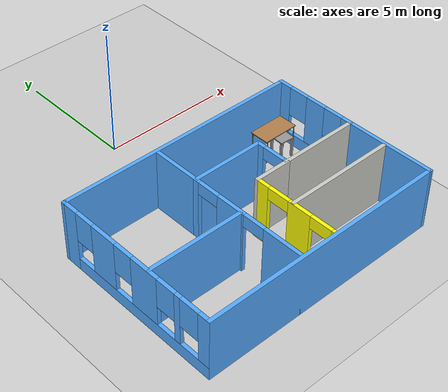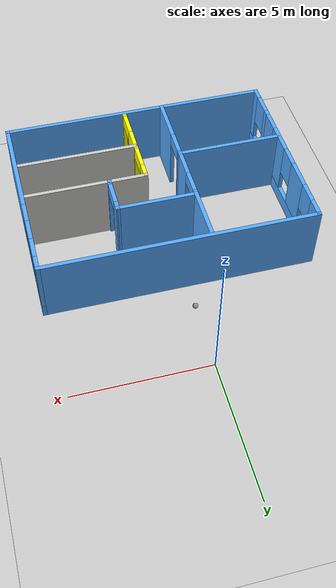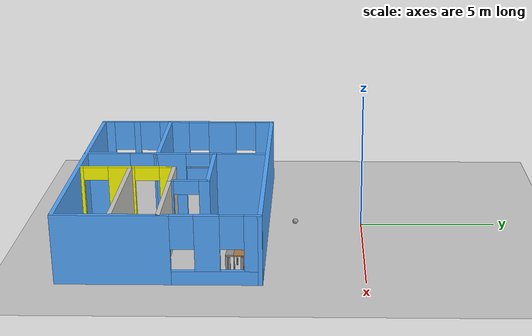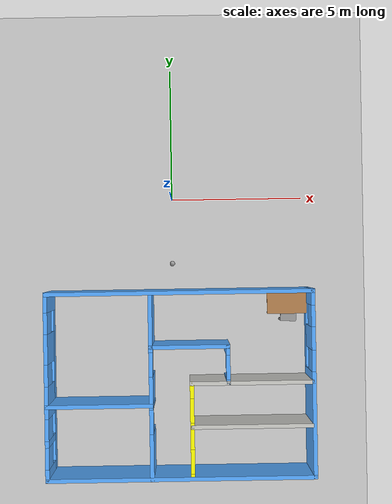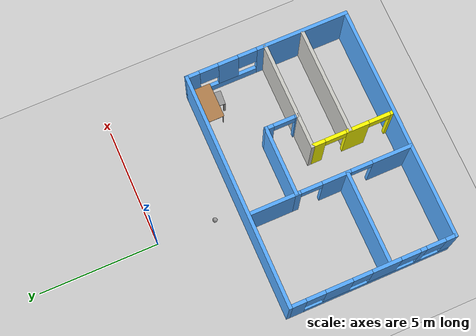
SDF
<sdf version="1.7">
 <world name="default">
  <model name="ground_plane">
   <static>1</static>
   <link name="link">
    <collision name="collision">
     <geometry><plane><normal>0 0 1</normal><size>100 100</size></plane></geometry>
     <surface>
      <contact><collide_bitmask>65535</collide_bitmask></contact>
      <friction><ode><mu>100</mu><mu2>50</mu2></ode></friction>
     </surface>
    </collision>
    <visual name="visual">
     <cast_shadows>0</cast_shadows>
     <geometry><plane><normal>0 0 1</normal><size>100 100</size></plane></geometry>
     <material>
      <script><uri>file://media/materials/scripts/gazebo.material</uri><name>Gazebo/Grey</name></script>
     </material>
    </visual>
   </link>
  </model>
  <model name="building">
   <pose>0.225 -6.955 0 0 -0 0</pose>
   <link name="Wall_13">
    <pose>-4.925 0 0 0 0 -1.5708</pose>
    <visual name="Wall_13_Visual_0">
     <pose>-3.1325 0 1.25 0 -0 0</pose>
     <geometry><box><size>0.735 0.15 2.5</size></box></geometry>
     <material>
      <script><uri>file://media/materials/scripts/gazebo.material</uri><name>Gazebo/Grey</name></script>
      <ambient>0.333333 0.666667 1 1</ambient>
     </material>
     <meta><layer>0</layer></meta>
    </visual>
    <collision name="Wall_13_Collision_0">
     <geometry><box><size>0.735 0.15 2.5</size></box></geometry>
     <pose>-3.1325 0 1.25 0 -0 0</pose>
    </collision>
    <visual name="Wall_13_Visual_1">
     <pose>0.3675 0 0.25 0 -0 0</pose>
     <geometry><box><size>6.265 0.15 0.5</size></box></geometry>
     <material>
      <script><uri>file://media/materials/scripts/gazebo.material</uri><name>Gazebo/Grey</name></script>
      <ambient>0.333333 0.666667 1 1</ambient>
     </material>
     <meta><layer>0</layer></meta>
    </visual>
    <collision name="Wall_13_Collision_1">
     <geometry><box><size>6.265 0.15 0.5</size></box></geometry>
     <pose>0.3675 0 0.25 0 -0 0</pose>
    </collision>
    <visual name="Wall_13_Visual_2">
     <pose>-1.405 0 1.5 0 -0 0</pose>
     <geometry><box><size>1.12 0.15 2</size></box></geometry>
     <material>
      <script><uri>file://media/materials/scripts/gazebo.material</uri><name>Gazebo/Grey</name></script>
      <ambient>0.333333 0.666667 1 1</ambient>
     </material>
     <meta><layer>0</layer></meta>
    </visual>
    <collision name="Wall_13_Collision_2">
     <geometry><box><size>1.12 0.15 2</size></box></geometry>
     <pose>-1.405 0 1.5 0 -0 0</pose>
    </collision>
    <visual name="Wall_13_Visual_3">
     <pose>0.555 0 1.5 0 -0 0</pose>
     <geometry><box><size>1.2 0.15 2</size></box></geometry>
     <material>
      <script><uri>file://media/materials/scripts/gazebo.material</uri><name>Gazebo/Grey</name></script>
      <ambient>0.333333 0.666667 1 1</ambient>
     </material>
     <meta><layer>0</layer></meta>
    </visual>
    <collision name="Wall_13_Collision_3">
     <geometry><box><size>1.2 0.15 2</size></box></geometry>
     <pose>0.555 0 1.5 0 -0 0</pose>
    </collision>
    <visual name="Wall_13_Visual_4">
     <pose>2.08 0 1.5 0 -0 0</pose>
     <geometry><box><size>0.25 0.15 2</size></box></geometry>
     <material>
      <script><uri>file://media/materials/scripts/gazebo.material</uri><name>Gazebo/Grey</name></script>
      <ambient>0.333333 0.666667 1 1</ambient>
     </material>
     <meta><layer>0</layer></meta>
    </visual>
    <collision name="Wall_13_Collision_4">
     <geometry><box><size>0.25 0.15 2</size></box></geometry>
     <pose>2.08 0 1.5 0 -0 0</pose>
    </collision>
    <visual name="Wall_13_Visual_5">
     <pose>3.2525 0 1.5 0 -0 0</pose>
     <geometry><box><size>0.495 0.15 2</size></box></geometry>
     <material>
      <script><uri>file://media/materials/scripts/gazebo.material</uri><name>Gazebo/Grey</name></script>
      <ambient>0.333333 0.666667 1 1</ambient>
     </material>
     <meta><layer>0</layer></meta>
    </visual>
    <collision name="Wall_13_Collision_5">
     <geometry><box><size>0.495 0.15 2</size></box></geometry>
     <pose>3.2525 0 1.5 0 -0 0</pose>
    </collision>
    <visual name="Wall_13_Visual_6">
     <pose>-2.365 0 1.9 0 -0 0</pose>
     <geometry><box><size>0.8 0.15 1.2</size></box></geometry>
     <material>
      <script><uri>file://media/materials/scripts/gazebo.material</uri><name>Gazebo/Grey</name></script>
      <ambient>0.333333 0.666667 1 1</ambient>
     </material>
     <meta><layer>0</layer></meta>
    </visual>
    <collision name="Wall_13_Collision_6">
     <geometry><box><size>0.8 0.15 1.2</size></box></geometry>
     <pose>-2.365 0 1.9 0 -0 0</pose>
    </collision>
    <visual name="Wall_13_Visual_7">
     <pose>-0.445 0 1.9 0 -0 0</pose>
     <geometry><box><size>0.8 0.15 1.2</size></box></geometry>
     <material>
      <script><uri>file://media/materials/scripts/gazebo.material</uri><name>Gazebo/Grey</name></script>
      <ambient>0.333333 0.666667 1 1</ambient>
     </material>
     <meta><layer>0</layer></meta>
    </visual>
    <collision name="Wall_13_Collision_7">
     <geometry><box><size>0.8 0.15 1.2</size></box></geometry>
     <pose>-0.445 0 1.9 0 -0 0</pose>
    </collision>
    <visual name="Wall_13_Visual_8">
     <pose>1.555 0 1.9 0 -0 0</pose>
     <geometry><box><size>0.8 0.15 1.2</size></box></geometry>
     <material>
      <script><uri>file://media/materials/scripts/gazebo.material</uri><name>Gazebo/Grey</name></script>
      <ambient>0.333333 0.666667 1 1</ambient>
     </material>
     <meta><layer>0</layer></meta>
    </visual>
    <collision name="Wall_13_Collision_8">
     <geometry><box><size>0.8 0.15 1.2</size></box></geometry>
     <pose>1.555 0 1.9 0 -0 0</pose>
    </collision>
    <visual name="Wall_13_Visual_9">
     <pose>2.605 0 1.9 0 -0 0</pose>
     <geometry><box><size>0.8 0.15 1.2</size></box></geometry>
     <material>
      <script><uri>file://media/materials/scripts/gazebo.material</uri><name>Gazebo/Grey</name></script>
      <ambient>0.333333 0.666667 1 1</ambient>
     </material>
     <meta><layer>0</layer></meta>
    </visual>
    <collision name="Wall_13_Collision_9">
     <geometry><box><size>0.8 0.15 1.2</size></box></geometry>
     <pose>2.605 0 1.9 0 -0 0</pose>
    </collision>
   </link>
   <link name="Wall_14">
    <collision name="Wall_14_Collision">
     <geometry><box><size>10 0.15 2.5</size></box></geometry>
     <pose>0 0 1.25 0 -0 0</pose>
    </collision>
    <visual name="Wall_14_Visual">
     <pose>0 0 1.25 0 -0 0</pose>
     <geometry><box><size>10 0.15 2.5</size></box></geometry>
     <material>
      <script><uri>file://media/materials/scripts/gazebo.material</uri><name>Gazebo/Grey</name></script>
      <ambient>0.333333 0.666667 1 1</ambient>
     </material>
     <meta><layer>0</layer></meta>
    </visual>
    <pose>0 -3.425 0 0 -0 0</pose>
   </link>
   <link name="Wall_15">
    <pose>4.925 0 0 0 -0 1.5708</pose>
    <visual name="Wall_15_Visual_0">
     <pose>-1.5275 0 1.25 0 -0 0</pose>
     <geometry><box><size>3.945 0.15 2.5</size></box></geometry>
     <material>
      <script><uri>file://media/materials/scripts/gazebo.material</uri><name>Gazebo/Grey</name></script>
      <ambient>0.333333 0.666667 1 1</ambient>
     </material>
     <meta><layer>0</layer></meta>
    </visual>
    <collision name="Wall_15_Collision_0">
     <geometry><box><size>3.945 0.15 2.5</size></box></geometry>
     <pose>-1.5275 0 1.25 0 -0 0</pose>
    </collision>
    <visual name="Wall_15_Visual_1">
     <pose>1.9725 0 0.25 0 -0 0</pose>
     <geometry><box><size>3.055 0.15 0.5</size></box></geometry>
     <material>
      <script><uri>file://media/materials/scripts/gazebo.material</uri><name>Gazebo/Grey</name></script>
      <ambient>0.333333 0.666667 1 1</ambient>
     </material>
     <meta><layer>0</layer></meta>
    </visual>
    <collision name="Wall_15_Collision_1">
     <geometry><box><size>3.055 0.15 0.5</size></box></geometry>
     <pose>1.9725 0 0.25 0 -0 0</pose>
    </collision>
    <visual name="Wall_15_Visual_2">
     <pose>1.67 0 1.5 0 -0 0</pose>
     <geometry><box><size>0.85 0.15 2</size></box></geometry>
     <material>
      <script><uri>file://media/materials/scripts/gazebo.material</uri><name>Gazebo/Grey</name></script>
      <ambient>0.333333 0.666667 1 1</ambient>
     </material>
     <meta><layer>0</layer></meta>
    </visual>
    <collision name="Wall_15_Collision_2">
     <geometry><box><size>0.85 0.15 2</size></box></geometry>
     <pose>1.67 0 1.5 0 -0 0</pose>
    </collision>
    <visual name="Wall_15_Visual_3">
     <pose>3.1975 0 1.5 0 -0 0</pose>
     <geometry><box><size>0.605 0.15 2</size></box></geometry>
     <material>
      <script><uri>file://media/materials/scripts/gazebo.material</uri><name>Gazebo/Grey</name></script>
      <ambient>0.333333 0.666667 1 1</ambient>
     </material>
     <meta><layer>0</layer></meta>
    </visual>
    <collision name="Wall_15_Collision_3">
     <geometry><box><size>0.605 0.15 2</size></box></geometry>
     <pose>3.1975 0 1.5 0 -0 0</pose>
    </collision>
    <visual name="Wall_15_Visual_4">
     <pose>0.845 0 1.9 0 -0 0</pose>
     <geometry><box><size>0.8 0.15 1.2</size></box></geometry>
     <material>
      <script><uri>file://media/materials/scripts/gazebo.material</uri><name>Gazebo/Grey</name></script>
      <ambient>0.333333 0.666667 1 1</ambient>
     </material>
     <meta><layer>0</layer></meta>
    </visual>
    <collision name="Wall_15_Collision_4">
     <geometry><box><size>0.8 0.15 1.2</size></box></geometry>
     <pose>0.845 0 1.9 0 -0 0</pose>
    </collision>
    <visual name="Wall_15_Visual_5">
     <pose>2.495 0 1.9 0 -0 0</pose>
     <geometry><box><size>0.8 0.15 1.2</size></box></geometry>
     <material>
      <script><uri>file://media/materials/scripts/gazebo.material</uri><name>Gazebo/Grey</name></script>
      <ambient>0.333333 0.666667 1 1</ambient>
     </material>
     <meta><layer>0</layer></meta>
    </visual>
    <collision name="Wall_15_Collision_5">
     <geometry><box><size>0.8 0.15 1.2</size></box></geometry>
     <pose>2.495 0 1.9 0 -0 0</pose>
    </collision>
   </link>
   <link name="Wall_16">
    <collision name="Wall_16_Collision">
     <geometry><box><size>10 0.15 2.5</size></box></geometry>
     <pose>0 0 1.25 0 -0 0</pose>
    </collision>
    <visual name="Wall_16_Visual">
     <pose>0 0 1.25 0 -0 0</pose>
     <geometry><box><size>10 0.15 2.5</size></box></geometry>
     <material>
      <script><uri>file://media/materials/scripts/gazebo.material</uri><name>Gazebo/Grey</name></script>
      <ambient>0.333333 0.666667 1 1</ambient>
     </material>
     <meta><layer>0</layer></meta>
    </visual>
    <pose>0 3.425 0 0 -0 3.14159</pose>
   </link>
   <link name="Wall_26">
    <pose>-1.075 -1 0 0 -0 1.5708</pose>
    <visual name="Wall_26_Visual_0">
     <pose>-1.6325 0 1.25 0 -0 0</pose>
     <geometry><box><size>1.735 0.15 2.5</size></box></geometry>
     <material>
      <script><uri>file://media/materials/scripts/gazebo.material</uri><name>Gazebo/Grey</name></script>
      <ambient>0.333333 0.666667 1 1</ambient>
     </material>
     <meta><layer>0</layer></meta>
    </visual>
    <collision name="Wall_26_Collision_0">
     <geometry><box><size>1.735 0.15 2.5</size></box></geometry>
     <pose>-1.6325 0 1.25 0 -0 0</pose>
    </collision>
    <visual name="Wall_26_Visual_1">
     <pose>0.74 0 1.25 0 -0 0</pose>
     <geometry><box><size>1.21 0.15 2.5</size></box></geometry>
     <material>
      <script><uri>file://media/materials/scripts/gazebo.material</uri><name>Gazebo/Grey</name></script>
      <ambient>0.333333 0.666667 1 1</ambient>
     </material>
     <meta><layer>0</layer></meta>
    </visual>
    <collision name="Wall_26_Collision_1">
     <geometry><box><size>1.21 0.15 2.5</size></box></geometry>
     <pose>0.74 0 1.25 0 -0 0</pose>
    </collision>
    <visual name="Wall_26_Visual_2">
     <pose>2.3725 0 1.25 0 -0 0</pose>
     <geometry><box><size>0.255 0.15 2.5</size></box></geometry>
     <material>
      <script><uri>file://media/materials/scripts/gazebo.material</uri><name>Gazebo/Grey</name></script>
      <ambient>0.333333 0.666667 1 1</ambient>
     </material>
     <meta><layer>0</layer></meta>
    </visual>
    <collision name="Wall_26_Collision_2">
     <geometry><box><size>0.255 0.15 2.5</size></box></geometry>
     <pose>2.3725 0 1.25 0 -0 0</pose>
    </collision>
    <visual name="Wall_26_Visual_3">
     <pose>-0.315001 0 2.25 0 -0 0</pose>
     <geometry><box><size>0.9 0.15 0.5</size></box></geometry>
     <material>
      <script><uri>file://media/materials/scripts/gazebo.material</uri><name>Gazebo/Grey</name></script>
      <ambient>0.333333 0.666667 1 1</ambient>
     </material>
     <meta><layer>0</layer></meta>
    </visual>
    <collision name="Wall_26_Collision_3">
     <geometry><box><size>0.9 0.15 0.5</size></box></geometry>
     <pose>-0.315001 0 2.25 0 -0 0</pose>
    </collision>
    <visual name="Wall_26_Visual_4">
     <pose>1.795 0 2.25 0 -0 0</pose>
     <geometry><box><size>0.9 0.15 0.5</size></box></geometry>
     <material>
      <script><uri>file://media/materials/scripts/gazebo.material</uri><name>Gazebo/Grey</name></script>
      <ambient>0.333333 0.666667 1 1</ambient>
     </material>
     <meta><layer>0</layer></meta>
    </visual>
    <collision name="Wall_26_Collision_4">
     <geometry><box><size>0.9 0.15 0.5</size></box></geometry>
     <pose>1.795 0 2.25 0 -0 0</pose>
    </collision>
   </link>
   <link name="Wall_29">
    <collision name="Wall_29_Collision">
     <geometry><box><size>1.5 0.15 2.5</size></box></geometry>
     <pose>0 0 1.25 0 -0 0</pose>
    </collision>
    <visual name="Wall_29_Visual">
     <pose>0 0 1.25 0 -0 0</pose>
     <geometry><box><size>1.5 0.15 2.5</size></box></geometry>
     <material>
      <script><uri>file://media/materials/scripts/gazebo.material</uri><name>Gazebo/CeilingTiled</name></script>
      <ambient>1 1 0 1</ambient>
     </material>
     <meta><layer>0</layer></meta>
    </visual>
    <pose>1.1 0.075 0 0 -0 3.14159</pose>
   </link>
   <link name="Wall_30">
    <pose>0.425 -1.6 0 0 0 -1.5708</pose>
    <visual name="Wall_30_Visual_0">
     <pose>-1.4425 0 1.25 0 -0 0</pose>
     <geometry><box><size>0.615 0.15 2.5</size></box></geometry>
     <material>
      <script><uri>file://media/materials/scripts/gazebo.material</uri><name>Gazebo/Grey</name></script>
      <ambient>1 1 0 1</ambient>
     </material>
     <meta><layer>0</layer></meta>
    </visual>
    <collision name="Wall_30_Collision_0">
     <geometry><box><size>0.615 0.15 2.5</size></box></geometry>
     <pose>-1.4425 0 1.25 0 -0 0</pose>
    </collision>
    <visual name="Wall_30_Visual_1">
     <pose>0.25 0 1.25 0 -0 0</pose>
     <geometry><box><size>0.97 0.15 2.5</size></box></geometry>
     <material>
      <script><uri>file://media/materials/scripts/gazebo.material</uri><name>Gazebo/Grey</name></script>
      <ambient>1 1 0 1</ambient>
     </material>
     <meta><layer>0</layer></meta>
    </visual>
    <collision name="Wall_30_Collision_1">
     <geometry><box><size>0.97 0.15 2.5</size></box></geometry>
     <pose>0.25 0 1.25 0 -0 0</pose>
    </collision>
    <visual name="Wall_30_Visual_2">
     <pose>1.6925 0 1.25 0 -0 0</pose>
     <geometry><box><size>0.115001 0.15 2.5</size></box></geometry>
     <material>
      <script><uri>file://media/materials/scripts/gazebo.material</uri><name>Gazebo/Grey</name></script>
      <ambient>1 1 0 1</ambient>
     </material>
     <meta><layer>0</layer></meta>
    </visual>
    <collision name="Wall_30_Collision_2">
     <geometry><box><size>0.115001 0.15 2.5</size></box></geometry>
     <pose>1.6925 0 1.25 0 -0 0</pose>
    </collision>
    <visual name="Wall_30_Visual_3">
     <pose>-0.685 0 2.25 0 -0 0</pose>
     <geometry><box><size>0.9 0.15 0.5</size></box></geometry>
     <material>
      <script><uri>file://media/materials/scripts/gazebo.material</uri><name>Gazebo/Grey</name></script>
      <ambient>1 1 0 1</ambient>
     </material>
     <meta><layer>0</layer></meta>
    </visual>
    <collision name="Wall_30_Collision_3">
     <geometry><box><size>0.9 0.15 0.5</size></box></geometry>
     <pose>-0.685 0 2.25 0 -0 0</pose>
    </collision>
    <visual name="Wall_30_Visual_4">
     <pose>1.185 0 2.25 0 -0 0</pose>
     <geometry><box><size>0.9 0.15 0.5</size></box></geometry>
     <material>
      <script><uri>file://media/materials/scripts/gazebo.material</uri><name>Gazebo/Grey</name></script>
      <ambient>1 1 0 1</ambient>
     </material>
     <meta><layer>0</layer></meta>
    </visual>
    <collision name="Wall_30_Collision_4">
     <geometry><box><size>0.9 0.15 0.5</size></box></geometry>
     <pose>1.185 0 2.25 0 -0 0</pose>
    </collision>
   </link>
   <link name="Wall_32">
    <collision name="Wall_32_Collision">
     <geometry><box><size>4 0.15 2.5</size></box></geometry>
     <pose>0 0 1.25 0 -0 0</pose>
    </collision>
    <visual name="Wall_32_Visual">
     <pose>0 0 1.25 0 -0 0</pose>
     <geometry><box><size>4 0.15 2.5</size></box></geometry>
     <material>
      <script><uri>file://media/materials/scripts/gazebo.material</uri><name>Gazebo/Grey</name></script>
      <ambient>0.333333 0.666667 1 1</ambient>
     </material>
     <meta><layer>0</layer></meta>
    </visual>
    <pose>-3 -0.715 0 0 -0 3.14159</pose>
   </link>
   <link name="Wall_41">
    <collision name="Wall_41_Collision">
     <geometry><box><size>3 0.15 2.5</size></box></geometry>
     <pose>0 0 1.25 0 -0 0</pose>
    </collision>
    <visual name="Wall_41_Visual">
     <pose>0 0 1.25 0 -0 0</pose>
     <geometry><box><size>3 0.15 2.5</size></box></geometry>
     <material>
      <script><uri>file://media/materials/scripts/gazebo.material</uri><name>Gazebo/Grey</name></script>
      <ambient>0.333333 0.666667 1 1</ambient>
     </material>
     <meta><layer>0</layer></meta>
    </visual>
    <pose>0.35 1.425 0 0 -0 0</pose>
   </link>
   <link name="Wall_42">
    <pose>1.775 0.75 0 0 0 -1.5708</pose>
    <visual name="Wall_42_Visual_0">
     <pose>-0.5575 0 1.25 0 -0 0</pose>
     <geometry><box><size>0.385 0.15 2.5</size></box></geometry>
     <material>
      <script><uri>file://media/materials/scripts/gazebo.material</uri><name>Gazebo/Grey</name></script>
      <ambient>0.333333 0.666667 1 1</ambient>
     </material>
     <meta><layer>0</layer></meta>
    </visual>
    <collision name="Wall_42_Collision_0">
     <geometry><box><size>0.385 0.15 2.5</size></box></geometry>
     <pose>-0.5575 0 1.25 0 -0 0</pose>
    </collision>
    <visual name="Wall_42_Visual_1">
     <pose>0.6425 0 1.25 0 -0 0</pose>
     <geometry><box><size>0.215 0.15 2.5</size></box></geometry>
     <material>
      <script><uri>file://media/materials/scripts/gazebo.material</uri><name>Gazebo/Grey</name></script>
      <ambient>0.333333 0.666667 1 1</ambient>
     </material>
     <meta><layer>0</layer></meta>
    </visual>
    <collision name="Wall_42_Collision_1">
     <geometry><box><size>0.215 0.15 2.5</size></box></geometry>
     <pose>0.6425 0 1.25 0 -0 0</pose>
    </collision>
    <visual name="Wall_42_Visual_2">
     <pose>0.085 0 2.25 0 -0 0</pose>
     <geometry><box><size>0.9 0.15 0.5</size></box></geometry>
     <material>
      <script><uri>file://media/materials/scripts/gazebo.material</uri><name>Gazebo/Grey</name></script>
      <ambient>0.333333 0.666667 1 1</ambient>
     </material>
     <meta><layer>0</layer></meta>
    </visual>
    <collision name="Wall_42_Collision_2">
     <geometry><box><size>0.9 0.15 0.5</size></box></geometry>
     <pose>0.085 0 2.25 0 -0 0</pose>
    </collision>
   </link>
   <link name="Wall_46">
    <collision name="Wall_46_Collision">
     <geometry><box><size>2 0.15 2.5</size></box></geometry>
     <pose>0 0 1.25 0 -0 0</pose>
    </collision>
    <visual name="Wall_46_Visual">
     <pose>0 0 1.25 0 -0 0</pose>
     <geometry><box><size>2 0.15 2.5</size></box></geometry>
     <material>
      <script><uri>file://media/materials/scripts/gazebo.material</uri><name>Gazebo/Grey</name></script>
      <ambient>0.333333 0.666667 1 1</ambient>
     </material>
     <meta><layer>0</layer></meta>
    </visual>
    <pose>-1.075 2.35 0 0 -0 1.5708</pose>
   </link>
   <link name="Wall_48">
    <collision name="Wall_48_Collision">
     <geometry><box><size>3.25 0.15 2.5</size></box></geometry>
     <pose>0 0 1.25 0 -0 0</pose>
    </collision>
    <visual name="Wall_48_Visual">
     <pose>0 0 1.25 0 -0 0</pose>
     <geometry><box><size>3.25 0.15 2.5</size></box></geometry>
     <material>
      <script><uri>file://media/materials/scripts/gazebo.material</uri><name>Gazebo/CeilingTiled</name></script>
      <ambient>1 1 0 1</ambient>
     </material>
     <meta><layer>0</layer></meta>
    </visual>
    <pose>3.325 0.075 0 0 -0 0</pose>
   </link>
   <link name="Wall_54">
    <collision name="Wall_54_Collision">
     <geometry><box><size>4.5 0.15 2.5</size></box></geometry>
     <pose>0 0 1.25 0 -0 0</pose>
    </collision>
    <visual name="Wall_54_Visual">
     <pose>0 0 1.25 0 -0 0</pose>
     <geometry><box><size>4.5 0.15 2.5</size></box></geometry>
     <material>
      <script><uri>file://media/materials/scripts/gazebo.material</uri><name>Gazebo/CeilingTiled</name></script>
      <ambient>1 1 0 1</ambient>
     </material>
     <meta><layer>0</layer></meta>
    </visual>
    <pose>2.63 -1.525 0 0 -0 0</pose>
   </link>
   <static>1</static>
  </model>
  <model name="table_2">
   <static>1</static>
   <link name="link">
    <collision name="surface">
     <pose>0 0 1 0 -0 0</pose>
     <geometry><box><size>1.5 0.8 0.03</size></box></geometry>
     <surface><friction><ode><mu>0.6</mu><mu2>0.6</mu2></ode></friction></surface>
    </collision>
    <visual name="visual1">
     <pose>0 0 1 0 -0 0</pose>
     <geometry><box><size>1.5 0.8 0.03</size></box></geometry>
     <material>
      <script><uri>file://media/materials/scripts/gazebo.material</uri><name>Gazebo/Wood</name></script>
     </material>
    </visual>
    <collision name="front_left_leg">
     <pose>0.68 0.38 0.5 0 -0 0</pose>
     <geometry><cylinder><radius>0.02</radius><length>1</length></cylinder></geometry>
    </collision>
    <visual name="front_left_leg">
     <pose>0.68 0.38 0.5 0 -0 0</pose>
     <geometry><cylinder><radius>0.02</radius><length>1</length></cylinder></geometry>
     <material>
      <script><uri>file://media/materials/scripts/gazebo.material</uri><name>Gazebo/Grey</name></script>
     </material>
    </visual>
    <collision name="front_right_leg">
     <pose>0.68 -0.38 0.5 0 -0 0</pose>
     <geometry><cylinder><radius>0.02</radius><length>1</length></cylinder></geometry>
    </collision>
    <visual name="front_right_leg">
     <pose>0.68 -0.38 0.5 0 -0 0</pose>
     <geometry><cylinder><radius>0.02</radius><length>1</length></cylinder></geometry>
     <material>
      <script><uri>file://media/materials/scripts/gazebo.material</uri><name>Gazebo/Grey</name></script>
     </material>
    </visual>
    <collision name="back_right_leg">
     <pose>-0.68 -0.38 0.5 0 -0 0</pose>
     <geometry><cylinder><radius>0.02</radius><length>1</length></cylinder></geometry>
    </collision>
    <visual name="back_right_leg">
     <pose>-0.68 -0.38 0.5 0 -0 0</pose>
     <geometry><cylinder><radius>0.02</radius><length>1</length></cylinder></geometry>
     <material>
      <script><uri>file://media/materials/scripts/gazebo.material</uri><name>Gazebo/Grey</name></script>
     </material>
    </visual>
    <collision name="back_left_leg">
     <pose>-0.68 0.38 0.5 0 -0 0</pose>
     <geometry><cylinder><radius>0.02</radius><length>1</length></cylinder></geometry>
    </collision>
    <visual name="back_left_leg">
     <pose>-0.68 0.38 0.5 0 -0 0</pose>
     <geometry><cylinder><radius>0.02</radius><length>1</length></cylinder></geometry>
     <material>
      <script><uri>file://media/materials/scripts/gazebo.material</uri><name>Gazebo/Grey</name></script>
     </material>
    </visual>
   </link>
   <pose>4.30856 -4.0322 0 0 -0 0</pose>
  </model>
  <model name="seat_clone_1">
   <link name="link_0">
    <pose>0 0 0.34 0 -0 0</pose>
    <inertial>
     <mass>1</mass>
     <inertia>
      <ixx>0.166667</ixx>
      <ixy>0</ixy>
      <ixz>0</ixz>
      <iyy>0.166667</iyy>
      <iyz>0</iyz>
      <izz>0.166667</izz>
     </inertia>
    </inertial>
    <visual name="visual">
     <geometry><box><size>0.6 0.6 0.05</size></box></geometry>
     <material>
      <lighting>1</lighting>
      <script><uri>file://media/materials/scripts/gazebo.material</uri><name>Gazebo/Grey</name></script>
      <shader type="pixel"><normal_map>__default__</normal_map></shader>
      <ambient>0.3 0.3 0.3 1</ambient>
      <diffuse>0.7 0.7 0.7 1</diffuse>
      <specular>0.01 0.01 0.01 1</specular>
      <emissive>0 0 0 1</emissive>
     </material>
    </visual>
    <collision name="collision">
     <geometry><box><size>0.6 0.6 0.05</size></box></geometry>
     <surface>
      <friction>
       <ode><mu>1</mu><mu2>1</mu2><fdir1>0 0 0</fdir1><slip1>0</slip1><slip2>0</slip2></ode>
       <torsional>
        <coefficient>1</coefficient>
        <patch_radius>0</patch_radius>
        <surface_radius>0</surface_radius>
        <use_patch_radius>1</use_patch_radius>
        <ode><slip>0</slip></ode>
       </torsional>
      </friction>
      <bounce><restitution_coefficient>0</restitution_coefficient><threshold>1e+06</threshold></bounce>
      <contact>
       <collide_without_contact>0</collide_without_contact>
       <collide_without_contact_bitmask>1</collide_without_contact_bitmask>
       <collide_bitmask>1</collide_bitmask>
       <ode>
        <soft_cfm>0</soft_cfm>
        <soft_erp>0.2</soft_erp>
        <kp>1e+13</kp>
        <kd>1</kd>
        <max_vel>0.01</max_vel>
        <min_depth>0</min_depth>
       </ode>
       <bullet>
        <split_impulse>1</split_impulse>
        <split_impulse_penetration_threshold>-0.01</split_impulse_penetration_threshold>
        <soft_cfm>0</soft_cfm>
        <soft_erp>0.2</soft_erp>
        <kp>1e+13</kp>
        <kd>1</kd>
       </bullet>
      </contact>
     </surface>
    </collision>
   </link>
   <link name="link_1">
    <pose>-0.26 -0.26 -0.085 0 -0 0</pose>
    <inertial>
     <mass>1</mass>
     <inertia>
      <ixx>0.166667</ixx>
      <ixy>0</ixy>
      <ixz>0</ixz>
      <iyy>0.166667</iyy>
      <iyz>0</iyz>
      <izz>0.166667</izz>
     </inertia>
    </inertial>
    <visual name="visual">
     <geometry><box><size>0.08 0.08 0.8</size></box></geometry>
     <material>
      <lighting>1</lighting>
      <script><uri>file://media/materials/scripts/gazebo.material</uri><name>Gazebo/Grey</name></script>
      <shader type="pixel"><normal_map>__default__</normal_map></shader>
      <ambient>0.3 0.3 0.3 1</ambient>
      <diffuse>0.7 0.7 0.7 1</diffuse>
      <specular>0.01 0.01 0.01 1</specular>
      <emissive>0 0 0 1</emissive>
     </material>
    </visual>
    <collision name="collision">
     <geometry><box><size>0.08 0.08 0.8</size></box></geometry>
     <surface>
      <friction>
       <ode><mu>1</mu><mu2>1</mu2><fdir1>0 0 0</fdir1><slip1>0</slip1><slip2>0</slip2></ode>
       <torsional>
        <coefficient>1</coefficient>
        <patch_radius>0</patch_radius>
        <surface_radius>0</surface_radius>
        <use_patch_radius>1</use_patch_radius>
        <ode><slip>0</slip></ode>
       </torsional>
      </friction>
      <bounce><restitution_coefficient>0</restitution_coefficient><threshold>1e+06</threshold></bounce>
      <contact>
       <collide_without_contact>0</collide_without_contact>
       <collide_without_contact_bitmask>1</collide_without_contact_bitmask>
       <collide_bitmask>1</collide_bitmask>
       <ode>
        <soft_cfm>0</soft_cfm>
        <soft_erp>0.2</soft_erp>
        <kp>1e+13</kp>
        <kd>1</kd>
        <max_vel>0.01</max_vel>
        <min_depth>0</min_depth>
       </ode>
       <bullet>
        <split_impulse>1</split_impulse>
        <split_impulse_penetration_threshold>-0.01</split_impulse_penetration_threshold>
        <soft_cfm>0</soft_cfm>
        <soft_erp>0.2</soft_erp>
        <kp>1e+13</kp>
        <kd>1</kd>
       </bullet>
      </contact>
     </surface>
    </collision>
   </link>
   <link name="link_1_clone">
    <pose>-0.26 0.26 -0.085 0 -0 0</pose>
    <inertial>
     <mass>1</mass>
     <inertia>
      <ixx>0.166667</ixx>
      <ixy>0</ixy>
      <ixz>0</ixz>
      <iyy>0.166667</iyy>
      <iyz>0</iyz>
      <izz>0.166667</izz>
     </inertia>
    </inertial>
    <visual name="visual">
     <geometry><box><size>0.08 0.08 0.8</size></box></geometry>
     <material>
      <lighting>1</lighting>
      <script><uri>file://media/materials/scripts/gazebo.material</uri><name>Gazebo/Grey</name></script>
      <shader type="pixel"><normal_map>__default__</normal_map></shader>
      <ambient>0.3 0.3 0.3 1</ambient>
      <diffuse>0.7 0.7 0.7 1</diffuse>
      <specular>0.01 0.01 0.01 1</specular>
      <emissive>0 0 0 1</emissive>
     </material>
    </visual>
    <collision name="collision">
     <geometry><box><size>0.08 0.08 0.8</size></box></geometry>
     <surface>
      <friction>
       <ode><mu>1</mu><mu2>1</mu2><fdir1>0 0 0</fdir1><slip1>0</slip1><slip2>0</slip2></ode>
       <torsional>
        <coefficient>1</coefficient>
        <patch_radius>0</patch_radius>
        <surface_radius>0</surface_radius>
        <use_patch_radius>1</use_patch_radius>
        <ode><slip>0</slip></ode>
       </torsional>
      </friction>
      <bounce><restitution_coefficient>0</restitution_coefficient><threshold>1e+06</threshold></bounce>
      <contact>
       <collide_without_contact>0</collide_without_contact>
       <collide_without_contact_bitmask>1</collide_without_contact_bitmask>
       <collide_bitmask>1</collide_bitmask>
       <ode>
        <soft_cfm>0</soft_cfm>
        <soft_erp>0.2</soft_erp>
        <kp>1e+13</kp>
        <kd>1</kd>
        <max_vel>0.01</max_vel>
        <min_depth>0</min_depth>
       </ode>
       <bullet>
        <split_impulse>1</split_impulse>
        <split_impulse_penetration_threshold>-0.01</split_impulse_penetration_threshold>
        <soft_cfm>0</soft_cfm>
        <soft_erp>0.2</soft_erp>
        <kp>1e+13</kp>
        <kd>1</kd>
       </bullet>
      </contact>
     </surface>
    </collision>
   </link>
   <link name="link_1_clone_0">
    <pose>0.26 -0.26 -0.085 0 -0 0</pose>
    <inertial>
     <mass>1</mass>
     <inertia>
      <ixx>0.166667</ixx>
      <ixy>0</ixy>
      <ixz>0</ixz>
      <iyy>0.166667</iyy>
      <iyz>0</iyz>
      <izz>0.166667</izz>
     </inertia>
    </inertial>
    <visual name="visual">
     <geometry><box><size>0.08 0.08 0.8</size></box></geometry>
     <material>
      <lighting>1</lighting>
      <script><uri>file://media/materials/scripts/gazebo.material</uri><name>Gazebo/Grey</name></script>
      <shader type="pixel"><normal_map>__default__</normal_map></shader>
      <ambient>0.3 0.3 0.3 1</ambient>
      <diffuse>0.7 0.7 0.7 1</diffuse>
      <specular>0.01 0.01 0.01 1</specular>
      <emissive>0 0 0 1</emissive>
     </material>
    </visual>
    <collision name="collision">
     <geometry><box><size>0.08 0.08 0.8</size></box></geometry>
     <surface>
      <friction>
       <ode><mu>1</mu><mu2>1</mu2><fdir1>0 0 0</fdir1><slip1>0</slip1><slip2>0</slip2></ode>
       <torsional>
        <coefficient>1</coefficient>
        <patch_radius>0</patch_radius>
        <surface_radius>0</surface_radius>
        <use_patch_radius>1</use_patch_radius>
        <ode><slip>0</slip></ode>
       </torsional>
      </friction>
      <bounce><restitution_coefficient>0</restitution_coefficient><threshold>1e+06</threshold></bounce>
      <contact>
       <collide_without_contact>0</collide_without_contact>
       <collide_without_contact_bitmask>1</collide_without_contact_bitmask>
       <collide_bitmask>1</collide_bitmask>
       <ode>
        <soft_cfm>0</soft_cfm>
        <soft_erp>0.2</soft_erp>
        <kp>1e+13</kp>
        <kd>1</kd>
        <max_vel>0.01</max_vel>
        <min_depth>0</min_depth>
       </ode>
       <bullet>
        <split_impulse>1</split_impulse>
        <split_impulse_penetration_threshold>-0.01</split_impulse_penetration_threshold>
        <soft_cfm>0</soft_cfm>
        <soft_erp>0.2</soft_erp>
        <kp>1e+13</kp>
        <kd>1</kd>
       </bullet>
      </contact>
     </surface>
    </collision>
   </link>
   <link name="link_1_clone_1">
    <pose>0.26 0.26 -0.085 0 -0 0</pose>
    <inertial>
     <mass>1</mass>
     <inertia>
      <ixx>0.166667</ixx>
      <ixy>0</ixy>
      <ixz>0</ixz>
      <iyy>0.166667</iyy>
      <iyz>0</iyz>
      <izz>0.166667</izz>
     </inertia>
    </inertial>
    <visual name="visual">
     <geometry><box><size>0.08 0.08 0.8</size></box></geometry>
     <material>
      <lighting>1</lighting>
      <script><uri>file://media/materials/scripts/gazebo.material</uri><name>Gazebo/Grey</name></script>
      <shader type="pixel"><normal_map>__default__</normal_map></shader>
      <ambient>0.3 0.3 0.3 1</ambient>
      <diffuse>0.7 0.7 0.7 1</diffuse>
      <specular>0.01 0.01 0.01 1</specular>
      <emissive>0 0 0 1</emissive>
     </material>
    </visual>
    <collision name="collision">
     <geometry><box><size>0.08 0.08 0.8</size></box></geometry>
     <surface>
      <friction>
       <ode><mu>1</mu><mu2>1</mu2><fdir1>0 0 0</fdir1><slip1>0</slip1><slip2>0</slip2></ode>
       <torsional>
        <coefficient>1</coefficient>
        <patch_radius>0</patch_radius>
        <surface_radius>0</surface_radius>
        <use_patch_radius>1</use_patch_radius>
        <ode><slip>0</slip></ode>
       </torsional>
      </friction>
      <bounce><restitution_coefficient>0</restitution_coefficient><threshold>1e+06</threshold></bounce>
      <contact>
       <collide_without_contact>0</collide_without_contact>
       <collide_without_contact_bitmask>1</collide_without_contact_bitmask>
       <collide_bitmask>1</collide_bitmask>
       <ode>
        <soft_cfm>0</soft_cfm>
        <soft_erp>0.2</soft_erp>
        <kp>1e+13</kp>
        <kd>1</kd>
        <max_vel>0.01</max_vel>
        <min_depth>0</min_depth>
       </ode>
       <bullet>
        <split_impulse>1</split_impulse>
        <split_impulse_penetration_threshold>-0.01</split_impulse_penetration_threshold>
        <soft_cfm>0</soft_cfm>
        <soft_erp>0.2</soft_erp>
        <kp>1e+13</kp>
        <kd>1</kd>
       </bullet>
      </contact>
     </surface>
    </collision>
   </link>
   <joint name="link_0_JOINT_0" type="revolute">
    <parent>link_0</parent>
    <child>link_1</child>
    <axis>
     <xyz>1 0 0</xyz>
     <limit>
      <lower>-1.79769e+308</lower>
      <upper>1.79769e+308</upper>
      <effort>-1</effort>
      <velocity>-1</velocity>
     </limit>
     <dynamics>
      <spring_reference>0</spring_reference>
      <spring_stiffness>0</spring_stiffness>
      <damping>0</damping>
     </dynamics>
    </axis>
    <physics>
     <ode><limit><cfm>0</cfm><erp>0.2</erp></limit><suspension><cfm>0</cfm><erp>0.2</erp></suspension></ode>
    </physics>
   </joint>
   <joint name="link_0_JOINT_1" type="revolute">
    <parent>link_0</parent>
    <child>link_1_clone</child>
    <axis>
     <xyz>1 0 0</xyz>
     <limit>
      <lower>-1.79769e+308</lower>
      <upper>1.79769e+308</upper>
      <effort>-1</effort>
      <velocity>-1</velocity>
     </limit>
     <dynamics>
      <spring_reference>0</spring_reference>
      <spring_stiffness>0</spring_stiffness>
      <damping>0</damping>
     </dynamics>
    </axis>
    <physics>
     <ode><limit><cfm>0</cfm><erp>0.2</erp></limit><suspension><cfm>0</cfm><erp>0.2</erp></suspension></ode>
    </physics>
   </joint>
   <joint name="link_0_JOINT_2" type="revolute">
    <parent>link_0</parent>
    <child>link_1_clone_1</child>
    <axis>
     <xyz>1 0 0</xyz>
     <limit>
      <lower>-1.79769e+308</lower>
      <upper>1.79769e+308</upper>
      <effort>-1</effort>
      <velocity>-1</velocity>
     </limit>
     <dynamics>
      <spring_reference>0</spring_reference>
      <spring_stiffness>0</spring_stiffness>
      <damping>0</damping>
      <friction>0</friction>
     </dynamics>
    </axis>
    <physics>
     <ode><limit><cfm>0</cfm><erp>0.2</erp></limit><suspension><cfm>0</cfm><erp>0.2</erp></suspension></ode>
    </physics>
   </joint>
   <joint name="link_0_JOINT_3" type="revolute">
    <parent>link_0</parent>
    <child>link_1_clone_0</child>
    <axis>
     <xyz>1 0 0</xyz>
     <limit>
      <lower>-1.79769e+308</lower>
      <upper>1.79769e+308</upper>
      <effort>-1</effort>
      <velocity>-1</velocity>
     </limit>
     <dynamics>
      <spring_reference>0</spring_reference>
      <spring_stiffness>0</spring_stiffness>
      <damping>0</damping>
     </dynamics>
    </axis>
    <physics>
     <ode><limit><cfm>0</cfm><erp>0.2</erp></limit><suspension><cfm>0</cfm><erp>0.2</erp></suspension></ode>
    </physics>
   </joint>
   <static>0</static>
   <pose>4.38296 -4.42045 0.485018 -3.1e-05 -5e-06 -0.066819</pose>
  </model>
  <model name="my_ball">
   <link name="link_0">
    <inertial>
     <mass>1</mass>
     <inertia><ixx>0.1</ixx><ixy>0</ixy><ixz>0</ixz><iyy>0.1</iyy><iyz>0</iyz><izz>0.1</izz></inertia>
    </inertial>
    <visual name="visual">
     <geometry><sphere><radius>0.1</radius></sphere></geometry>
     <material>
      <lighting>1</lighting>
      <script><uri>file://media/materials/scripts/gazebo.material</uri><name>Gazebo/Grey</name></script>
      <shader type="pixel"><normal_map>__default__</normal_map></shader>
      <ambient>1 1 1 1</ambient>
      <diffuse>1 1 1 1</diffuse>
      <specular>1 1 1 1</specular>
      <emissive>1 1 1 1</emissive>
     </material>
    </visual>
    <collision name="collision">
     <geometry><sphere><radius>0.1</radius></sphere></geometry>
     <surface>
      <friction>
       <ode><mu>1</mu><mu2>1</mu2><fdir1>0 0 0</fdir1><slip1>0</slip1><slip2>0</slip2></ode>
       <torsional>
        <coefficient>1</coefficient>
        <patch_radius>0</patch_radius>
        <surface_radius>0</surface_radius>
        <use_patch_radius>1</use_patch_radius>
        <ode><slip>0</slip></ode>
       </torsional>
      </friction>
      <bounce><restitution_coefficient>0</restitution_coefficient><threshold>1e+06</threshold></bounce>
      <contact>
       <collide_without_contact>0</collide_without_contact>
       <collide_without_contact_bitmask>1</collide_without_contact_bitmask>
       <collide_bitmask>1</collide_bitmask>
       <ode>
        <soft_cfm>0</soft_cfm>
        <soft_erp>0.2</soft_erp>
        <kp>1e+13</kp>
        <kd>1</kd>
        <max_vel>0.01</max_vel>
        <min_depth>0</min_depth>
       </ode>
       <bullet>
        <split_impulse>1</split_impulse>
        <split_impulse_penetration_threshold>-0.01</split_impulse_penetration_threshold>
        <soft_cfm>0</soft_cfm>
        <soft_erp>0.2</soft_erp>
        <kp>1e+13</kp>
        <kd>1</kd>
       </bullet>
      </contact>
     </surface>
    </collision>
   </link>
   <static>0</static>
   <pose>-0.025191 -2.4712 0.1 0 -0 0</pose>
  </model>
 </world>
</sdf>
